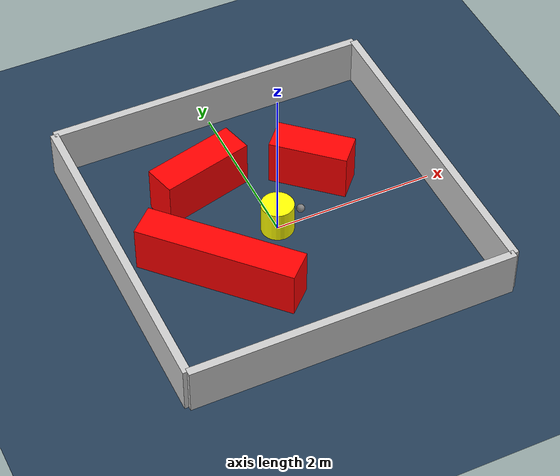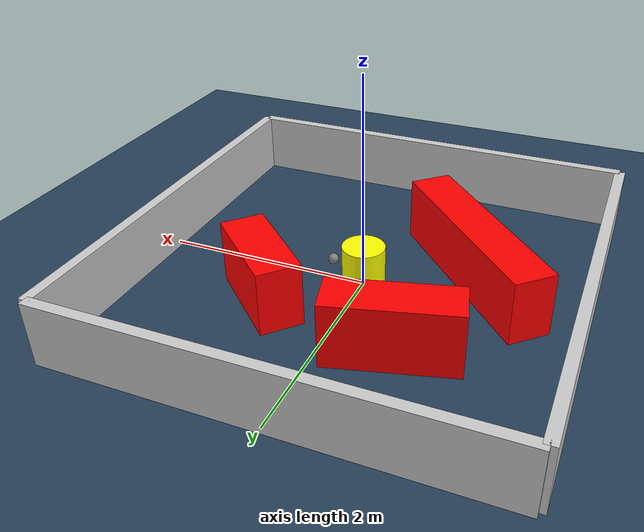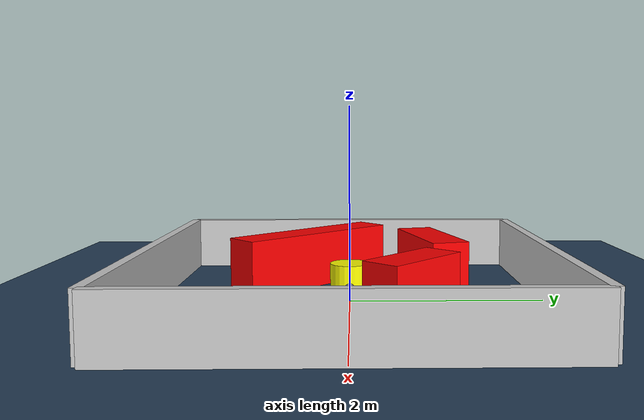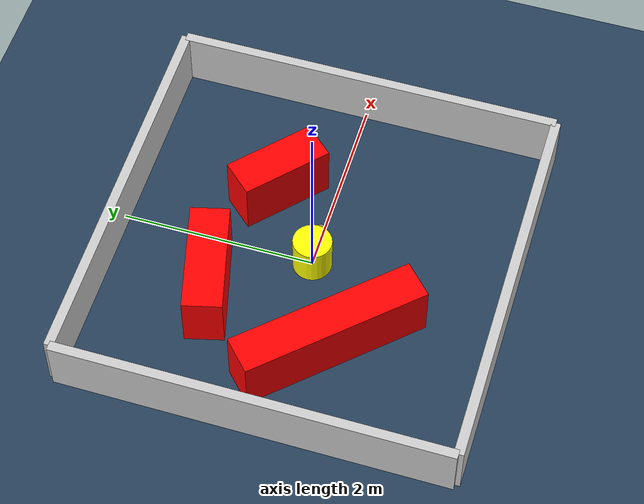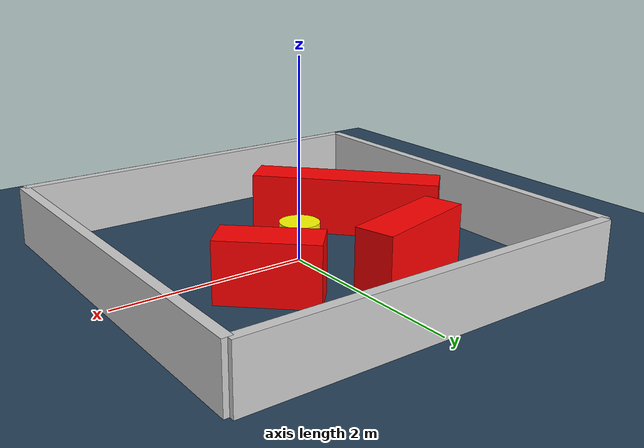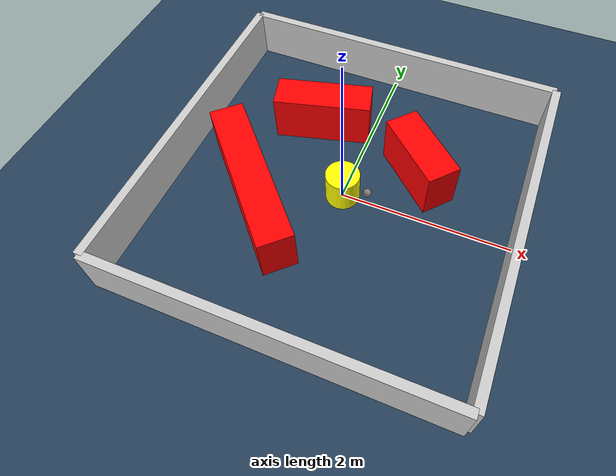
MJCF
<?xml version="1.0" ?>
<mujoco model="generated_environment">
  <option timestep="0.01" integrator="RK4" cone="elliptic"/>
  <default>
    <geom density="1"/>
  </default>
  <asset>
    <texture builtin="gradient" height="3072" rgb1="0.3 0.5 0.7" rgb2="0 0 0" type="skybox" width="512"/>
    <texture builtin="checker" height="300" mark="edge" markrgb="0.8 0.8 0.8" name="groundplane" rgb1="0.2 0.3 0.4" rgb2="0.1 0.2 0.3" type="2d" width="300"/>
    <material name="groundplane" reflectance="0.2" texrepeat="5 5" texture="groundplane" texuniform="true"/>
    <material name="robot" rgba="0.0 1.0 0.0 1"/>
  </asset>
  <worldbody>
    <light dir="0 0 -1" directional="true" pos="0 0 1.5"/>
    <geom condim="4" friction="1.0 0.005 0.001" material="groundplane" name="floor" size="0 0 0.05" type="plane"/>
    <body name="walls">
      <geom name="wall_1" condim="4" pos="-2.0 0.0 0.3" rgba="0.800000011920929 0.800000011920929 0.800000011920929 1.0" size="0.05 2.0 0.3" type="box"/>
      <geom name="wall_2" condim="4" pos="2.0 0.0 0.3" rgba="0.800000011920929 0.800000011920929 0.800000011920929 1.0" size="0.05 2.0 0.3" type="box"/>
      <geom name="wall_3" condim="4" pos="0.0 -2.0 0.3" rgba="0.800000011920929 0.800000011920929 0.800000011920929 1.0" size="2.0 0.05 0.3" type="box"/>
      <geom name="wall_4" condim="4" pos="0.0 2.0 0.3" rgba="0.800000011920929 0.800000011920929 0.800000011920929 1.0" size="2.0 0.05 0.3" type="box"/>
    </body>
    <body name="robot">
      <joint name="joint_x" type="slide" pos="0 0 0" axis="1 0 0"/>
      <joint name="joint_y" type="slide" pos="0 0 0" axis="0 1 0"/>
      <geom name="robot" type="sphere" pos="0.3 0.0 0.2" size="0.05" mass="5." friction="1.0 0.005 0.0001" condim="4" rgba="0.5 0.5 0.5 1.0"/>
      <site name="sensor_ball"/>
    </body>
    <body name="obstacle_movable_1">
      <geom name="obstacle_movable_1" condim="4" pos="0.0 0.0 0.2" euler="0 0 0.0" friction="1.0 0.005 0.001" rgba="1.0 1.0 0.0 1.0" size="0.2 0.2 0.0" type="cylinder" mass="0.1"/>
      <joint type="free"/>
    </body>
    <body name="obstacle_2_static">
      <geom name="obstacle_2_static" condim="4" pos="0.7317552292170131 0.5847996822960744 0.3" euler="0 0 137.65606491718853" friction="1.0 0.005 0.001" rgba="1 0 0 1" size="0.4794469158230265 0.2 0.3" type="box"/>
    </body>
    <body name="obstacle_3_static">
      <geom name="obstacle_3_static" condim="4" pos="-0.9241202539495916 -0.4425402249663928 0.3" euler="0 0 133.2613735555264" friction="1.0 0.005 0.001" rgba="1 0 0 1" size="0.9742348424634688 0.2 0.3" type="box"/>
    </body>
    <body name="obstacle_4_static">
      <geom name="obstacle_4_static" condim="4" pos="-0.6069135551560298 0.9008148129330957 0.3" euler="0 0 194.5512214479864" friction="1.0 0.005 0.001" rgba="1 0 0 1" size="0.5793857896994752 0.2 0.3" type="box"/>
    </body>
  </worldbody>
  <actuator>
    <motor name="actuator_x" joint="joint_x" gear="1" ctrlrange="-1 1"/>
    <motor name="actuator_y" joint="joint_y" gear="1" ctrlrange="-1 1"/>
  </actuator>
</mujoco>
